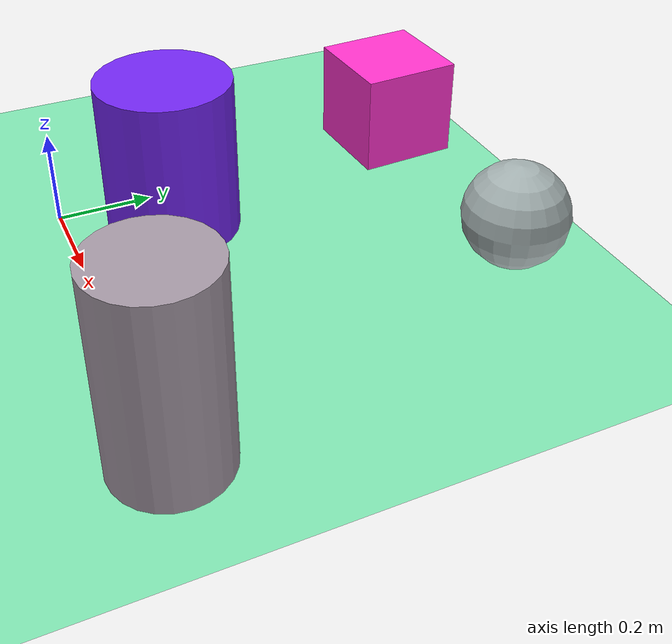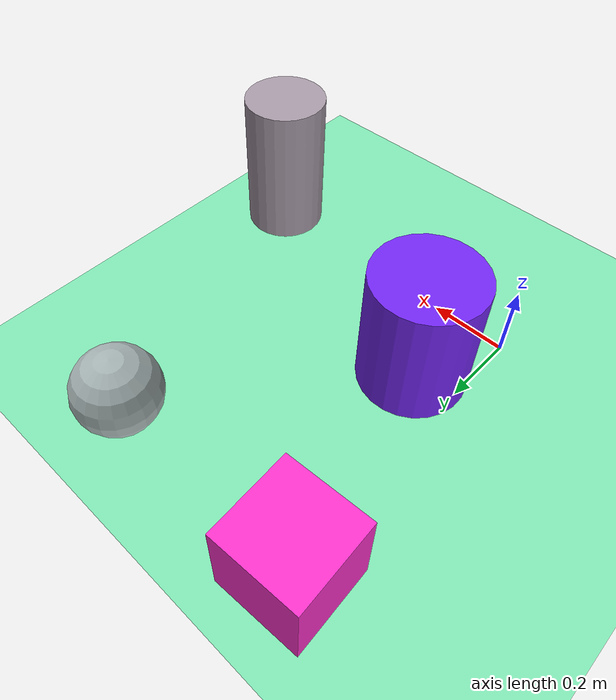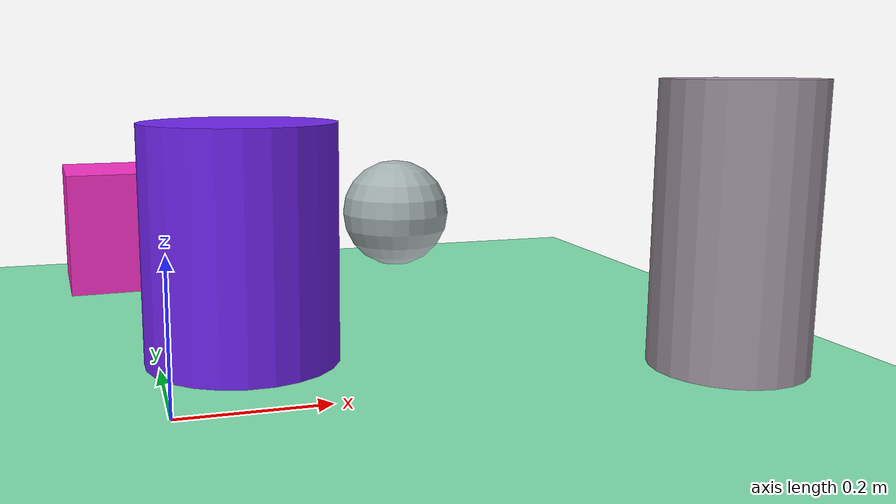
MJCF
<mujoco>
   <asset>
<texture type="skybox" builtin="gradient" rgb1="0.5 0.1 0.0" rgb2="0.3 0.1 0.5" width="256" height="256"/>
<texture name="checker_0" builtin="checker" rgb1="0.8 0.4 0.9" rgb2="0.5 1.0 0.5" width="200" height="200"/>
<texture name="gradient_1" builtin="gradient" rgb1="0.6 0.3 0.6" rgb2="0.7 0.9 0.7" width="200" height="200"/>
<texture name="gradient_2" builtin="gradient" rgb1="0.6 0.2 1.0" rgb2="0.3 0.1 0.9" width="200" height="200"/>
<texture name="flat_3" builtin="flat" rgb1="1.0 0.2 0.8" rgb2="1.0 0.2 0.8"  width="200" height="200"/><material name="checker_0_mat" reflectance="0" texrepeat="9 9" texture="checker_0" texuniform="false" />
<material name="gradient_1_mat" reflectance="0" texture="gradient_1" texuniform="true"/>
<material name="gradient_2_mat" reflectance="0" texture="gradient_2" texuniform="true"/>
<material name="flat_3_mat" reflectance="0" texture="flat_3" texuniform="true"/>
   </asset>

   <worldbody>
      <light diffuse=".9 .9 .9" pos="0 0 3" dir="0 0 -1"/>
     <geom type="plane" size="1 1 0.1" rgba="0.5 0.9 0.7 1"/>
<geom type="sphere" pos="0.53 0.8 0.11" size="0.11 0.11 0.11" material="checker_0_mat" euler="0 0 88" />
<geom type="cylinder" pos="0.77 -0.0 0.2" size="0.11 0.2 0.2" material="gradient_1_mat" euler="0 0 89" />
<geom type="cylinder" pos="0.12 0.22 0.17" size="0.14 0.17 0.17" material="gradient_2_mat" euler="0 0 54" />
<geom type="box" pos="-0.02 0.8 0.11" size="0.11 0.11 0.11" material="flat_3_mat" euler="0 0 3" /><camera euler="60 0 180" fovy="60" name="camera1" pos="-0.2 -1.5 1"></camera>   </worldbody>
</mujoco>
